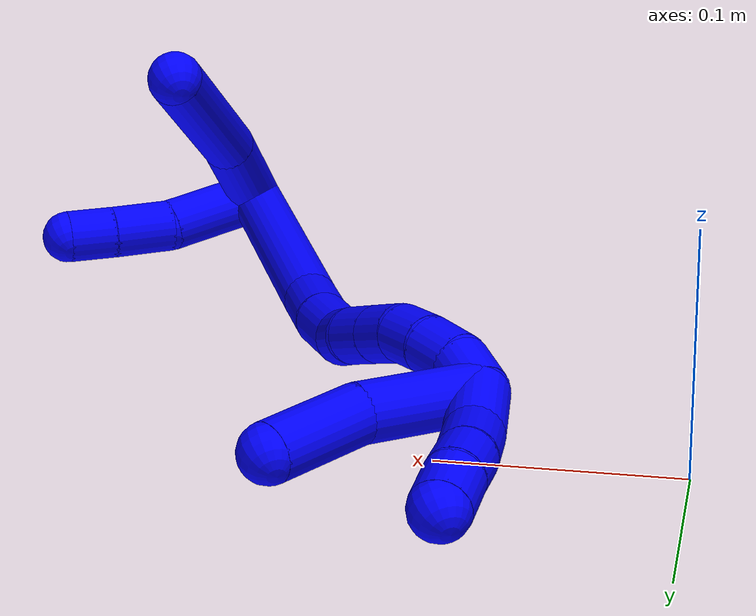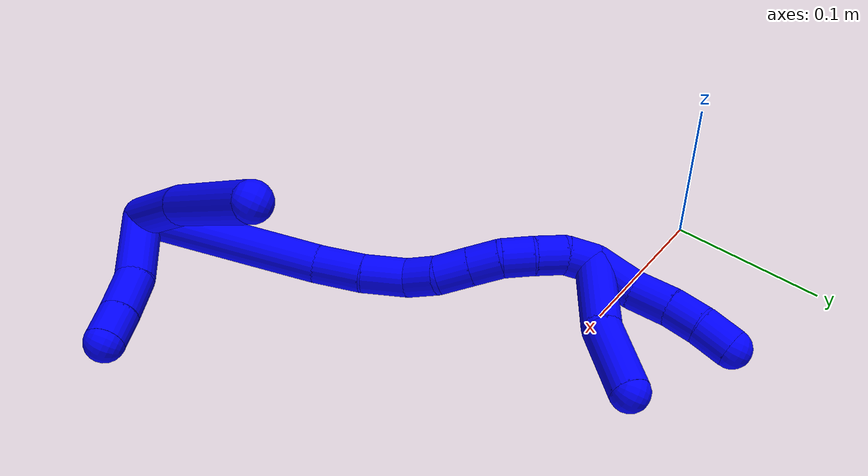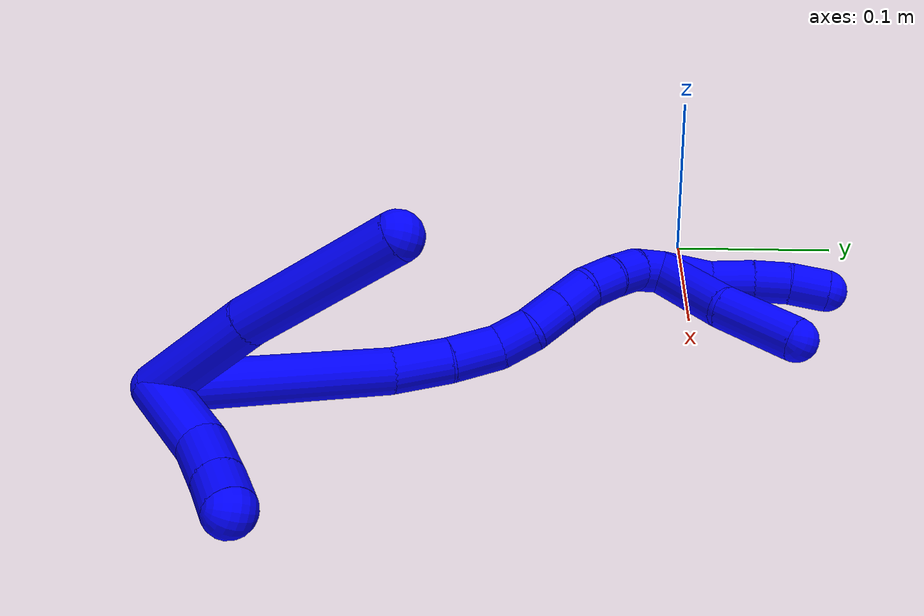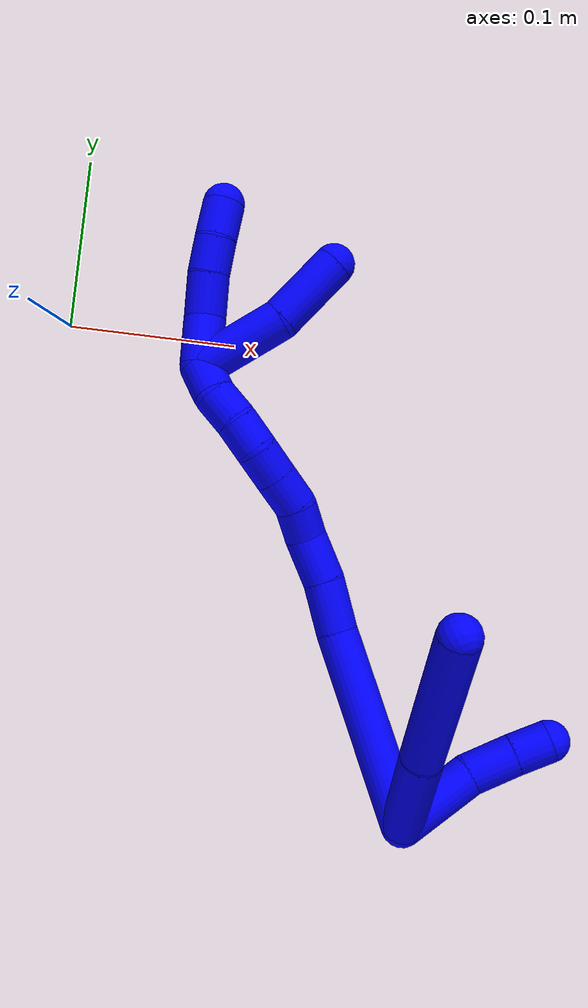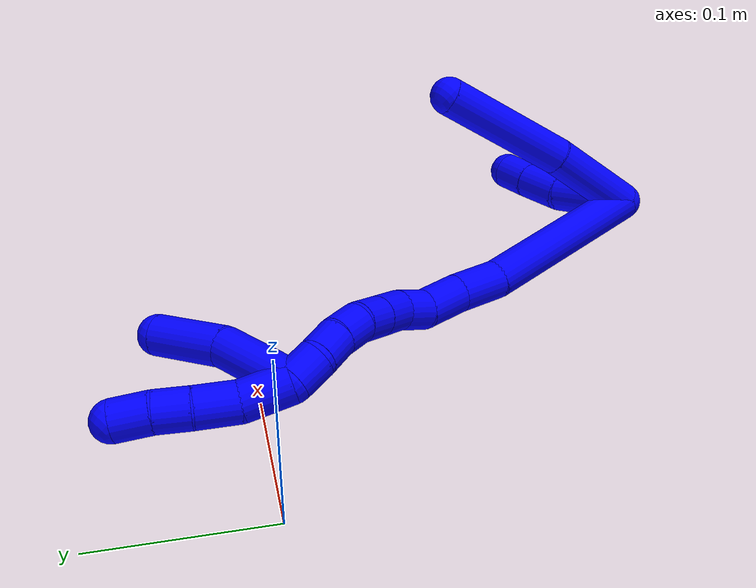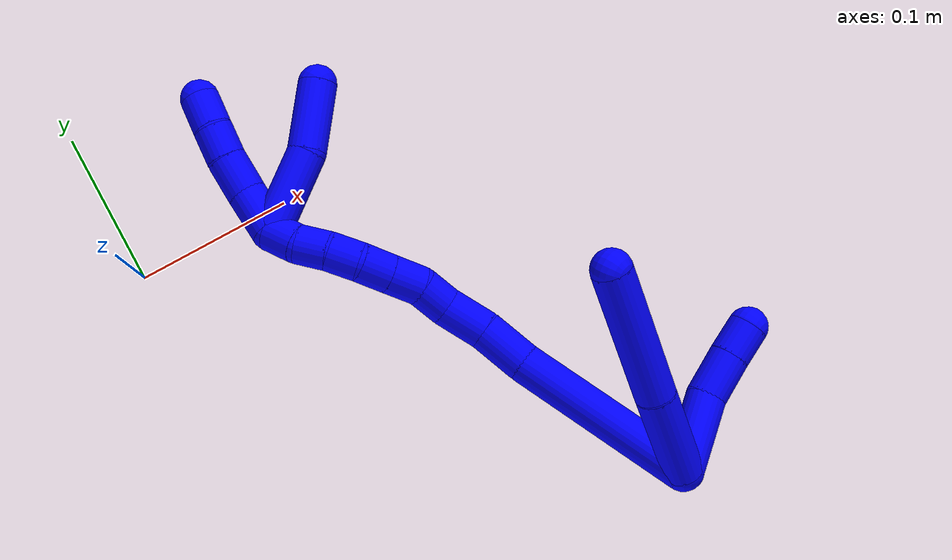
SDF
<sdf version="1.7">
 <world name="default">
  <model name="1">
   <static>0</static>
   <link name="1">
    <collision name="collision-cylinder-e_1_2_8">
     <pose>0.000369 0.029626 -0.00957 -1.88324 0.01184 -0.016267</pose>
     <geometry><cylinder><radius>0.0125</radius><length>0.06227</length></cylinder></geometry>
     <surface>
      <friction><ode><mu>1.16</mu><mu2>1.16</mu2><slip1>0</slip1><slip2>0</slip2></ode></friction>
      <contact><ode><kp>1e+06</kp><kd>1</kd><max_vel>0</max_vel><min_depth>0.001</min_depth></ode></contact>
     </surface>
    </collision>
    <visual name="visual-cylinder-e_1_2_8">
     <pose>0.000369 0.029626 -0.00957 -1.88324 0.01184 -0.016267</pose>
     <geometry><cylinder><radius>0.0125</radius><length>0.06227</length></cylinder></geometry>
     <material><ambient>0 0 1 1</ambient></material>
    </visual>
    <collision name="collision-cylinder-e_2_8_6">
     <pose>0.004492 0.099818 -0.035398 -1.95198 0.085691 -0.12657</pose>
     <geometry><cylinder><radius>0.0125</radius><length>0.08773</length></cylinder></geometry>
     <surface>
      <friction><ode><mu>1.16</mu><mu2>1.16</mu2><slip1>0</slip1><slip2>0</slip2></ode></friction>
      <contact><ode><kp>1e+06</kp><kd>1</kd><max_vel>0</max_vel><min_depth>0.001</min_depth></ode></contact>
     </surface>
    </collision>
    <visual name="visual-cylinder-e_2_8_6">
     <pose>0.004492 0.099818 -0.035398 -1.95198 0.085691 -0.12657</pose>
     <geometry><cylinder><radius>0.0125</radius><length>0.08773</length></cylinder></geometry>
     <material><ambient>0 0 1 1</ambient></material>
    </visual>
    <collision name="collision-cylinder-e_1_2_9">
     <pose>0.021932 0.008787 -0.006361 -2.19738 1.11146 -1.76529</pose>
     <geometry><cylinder><radius>0.0125</radius><length>0.048936</length></cylinder></geometry>
     <surface>
      <friction><ode><mu>1.16</mu><mu2>1.16</mu2><slip1>0</slip1><slip2>0</slip2></ode></friction>
      <contact><ode><kp>1e+06</kp><kd>1</kd><max_vel>0</max_vel><min_depth>0.001</min_depth></ode></contact>
     </surface>
    </collision>
    <visual name="visual-cylinder-e_1_2_9">
     <pose>0.021932 0.008787 -0.006361 -2.19738 1.11146 -1.76529</pose>
     <geometry><cylinder><radius>0.0125</radius><length>0.048936</length></cylinder></geometry>
     <material><ambient>0 0 1 1</ambient></material>
    </visual>
    <collision name="collision-cylinder-e_2_9_10">
     <pose>0.057055 0.023398 -0.013101 -1.63567 1.15426 -1.21438</pose>
     <geometry><cylinder><radius>0.0125</radius><length>0.028848</length></cylinder></geometry>
     <surface>
      <friction><ode><mu>1.16</mu><mu2>1.16</mu2><slip1>0</slip1><slip2>0</slip2></ode></friction>
      <contact><ode><kp>1e+06</kp><kd>1</kd><max_vel>0</max_vel><min_depth>0.001</min_depth></ode></contact>
     </surface>
    </collision>
    <visual name="visual-cylinder-e_2_9_10">
     <pose>0.057055 0.023398 -0.013101 -1.63567 1.15426 -1.21438</pose>
     <geometry><cylinder><radius>0.0125</radius><length>0.028848</length></cylinder></geometry>
     <material><ambient>0 0 1 1</ambient></material>
    </visual>
    <collision name="collision-cylinder-e_3_10_5">
     <pose>0.080457 0.033589 -0.013327 -1.53612 1.16647 -1.1348</pose>
     <geometry><cylinder><radius>0.0125</radius><length>0.022216</length></cylinder></geometry>
     <surface>
      <friction><ode><mu>1.16</mu><mu2>1.16</mu2><slip1>0</slip1><slip2>0</slip2></ode></friction>
      <contact><ode><kp>1e+06</kp><kd>1</kd><max_vel>0</max_vel><min_depth>0.001</min_depth></ode></contact>
     </surface>
    </collision>
    <visual name="visual-cylinder-e_3_10_5">
     <pose>0.080457 0.033589 -0.013327 -1.53612 1.16647 -1.1348</pose>
     <geometry><cylinder><radius>0.0125</radius><length>0.022216</length></cylinder></geometry>
     <material><ambient>0 0 1 1</ambient></material>
    </visual>
    <collision name="collision-cylinder-e_1_2_11">
     <pose>-0.004377 0.018109 -0.055585 -2.82666 -0.074728 0.462427</pose>
     <geometry><cylinder><radius>0.0125</radius><length>0.117249</length></cylinder></geometry>
     <surface>
      <friction><ode><mu>1.16</mu><mu2>1.16</mu2><slip1>0</slip1><slip2>0</slip2></ode></friction>
      <contact><ode><kp>1e+06</kp><kd>1</kd><max_vel>0</max_vel><min_depth>0.001</min_depth></ode></contact>
     </surface>
    </collision>
    <visual name="visual-cylinder-e_1_2_11">
     <pose>-0.004377 0.018109 -0.055585 -2.82666 -0.074728 0.462427</pose>
     <geometry><cylinder><radius>0.0125</radius><length>0.117249</length></cylinder></geometry>
     <material><ambient>0 0 1 1</ambient></material>
    </visual>
    <collision name="collision-cylinder-e_2_11_12">
     <pose>-0.009858 0.04376 -0.124943 -2.64054 -0.070249 0.272919</pose>
     <geometry><cylinder><radius>0.0125</radius><length>0.031482</length></cylinder></geometry>
     <surface>
      <friction><ode><mu>1.16</mu><mu2>1.16</mu2><slip1>0</slip1><slip2>0</slip2></ode></friction>
      <contact><ode><kp>1e+06</kp><kd>1</kd><max_vel>0</max_vel><min_depth>0.001</min_depth></ode></contact>
     </surface>
    </collision>
    <visual name="visual-cylinder-e_2_11_12">
     <pose>-0.009858 0.04376 -0.124943 -2.64054 -0.070249 0.272919</pose>
     <geometry><cylinder><radius>0.0125</radius><length>0.031482</length></cylinder></geometry>
     <material><ambient>0 0 1 1</ambient></material>
    </visual>
    <collision name="collision-cylinder-e_3_12_13">
     <pose>-0.013845 0.057466 -0.151346 -2.68762 -0.202218 0.827768</pose>
     <geometry><cylinder><radius>0.0125</radius><length>0.028695</length></cylinder></geometry>
     <surface>
      <friction><ode><mu>1.16</mu><mu2>1.16</mu2><slip1>0</slip1><slip2>0</slip2></ode></friction>
      <contact><ode><kp>1e+06</kp><kd>1</kd><max_vel>0</max_vel><min_depth>0.001</min_depth></ode></contact>
     </surface>
    </collision>
    <visual name="visual-cylinder-e_3_12_13">
     <pose>-0.013845 0.057466 -0.151346 -2.68762 -0.202218 0.827768</pose>
     <geometry><cylinder><radius>0.0125</radius><length>0.028695</length></cylinder></geometry>
     <material><ambient>0 0 1 1</ambient></material>
    </visual>
    <collision name="collision-cylinder-e_4_13_14">
     <pose>-0.019141 0.070956 -0.171019 -2.33639 -0.233331 0.537102</pose>
     <geometry><cylinder><radius>0.0125</radius><length>0.020888</length></cylinder></geometry>
     <surface>
      <friction><ode><mu>1.16</mu><mu2>1.16</mu2><slip1>0</slip1><slip2>0</slip2></ode></friction>
      <contact><ode><kp>1e+06</kp><kd>1</kd><max_vel>0</max_vel><min_depth>0.001</min_depth></ode></contact>
     </surface>
    </collision>
    <visual name="visual-cylinder-e_4_13_14">
     <pose>-0.019141 0.070956 -0.171019 -2.33639 -0.233331 0.537102</pose>
     <geometry><cylinder><radius>0.0125</radius><length>0.020888</length></cylinder></geometry>
     <material><ambient>0 0 1 1</ambient></material>
    </visual>
    <collision name="collision-cylinder-e_5_14_15">
     <pose>-0.026757 0.084167 -0.185517 -2.47342 -0.500897 1.27029</pose>
     <geometry><cylinder><radius>0.0125</radius><length>0.021659</length></cylinder></geometry>
     <surface>
      <friction><ode><mu>1.16</mu><mu2>1.16</mu2><slip1>0</slip1><slip2>0</slip2></ode></friction>
      <contact><ode><kp>1e+06</kp><kd>1</kd><max_vel>0</max_vel><min_depth>0.001</min_depth></ode></contact>
     </surface>
    </collision>
    <visual name="visual-cylinder-e_5_14_15">
     <pose>-0.026757 0.084167 -0.185517 -2.47342 -0.500897 1.27029</pose>
     <geometry><cylinder><radius>0.0125</radius><length>0.021659</length></cylinder></geometry>
     <material><ambient>0 0 1 1</ambient></material>
    </visual>
    <collision name="collision-cylinder-e_6_15_16">
     <pose>-0.036687 0.09551 -0.199906 -2.47469 -0.492044 1.25454</pose>
     <geometry><cylinder><radius>0.0125</radius><length>0.020023</length></cylinder></geometry>
     <surface>
      <friction><ode><mu>1.16</mu><mu2>1.16</mu2><slip1>0</slip1><slip2>0</slip2></ode></friction>
      <contact><ode><kp>1e+06</kp><kd>1</kd><max_vel>0</max_vel><min_depth>0.001</min_depth></ode></contact>
     </surface>
    </collision>
    <visual name="visual-cylinder-e_6_15_16">
     <pose>-0.036687 0.09551 -0.199906 -2.47469 -0.492044 1.25454</pose>
     <geometry><cylinder><radius>0.0125</radius><length>0.020023</length></cylinder></geometry>
     <material><ambient>0 0 1 1</ambient></material>
    </visual>
    <collision name="collision-cylinder-e_7_16_17">
     <pose>-0.045436 0.104405 -0.215329 -2.75693 -0.413541 1.64508</pose>
     <geometry><cylinder><radius>0.0125</radius><length>0.020004</length></cylinder></geometry>
     <surface>
      <friction><ode><mu>1.16</mu><mu2>1.16</mu2><slip1>0</slip1><slip2>0</slip2></ode></friction>
      <contact><ode><kp>1e+06</kp><kd>1</kd><max_vel>0</max_vel><min_depth>0.001</min_depth></ode></contact>
     </surface>
    </collision>
    <visual name="visual-cylinder-e_7_16_17">
     <pose>-0.045436 0.104405 -0.215329 -2.75693 -0.413541 1.64508</pose>
     <geometry><cylinder><radius>0.0125</radius><length>0.020004</length></cylinder></geometry>
     <material><ambient>0 0 1 1</ambient></material>
    </visual>
    <collision name="collision-cylinder-e_8_17_18">
     <pose>-0.053616 0.109632 -0.232734 -2.94347 -0.429135 2.28582</pose>
     <geometry><cylinder><radius>0.0125</radius><length>0.02</length></cylinder></geometry>
     <surface>
      <friction><ode><mu>1.16</mu><mu2>1.16</mu2><slip1>0</slip1><slip2>0</slip2></ode></friction>
      <contact><ode><kp>1e+06</kp><kd>1</kd><max_vel>0</max_vel><min_depth>0.001</min_depth></ode></contact>
     </surface>
    </collision>
    <visual name="visual-cylinder-e_8_17_18">
     <pose>-0.053616 0.109632 -0.232734 -2.94347 -0.429135 2.28582</pose>
     <geometry><cylinder><radius>0.0125</radius><length>0.02</length></cylinder></geometry>
     <material><ambient>0 0 1 1</ambient></material>
    </visual>
    <collision name="collision-cylinder-e_9_18_1">
     <pose>-0.059059 0.112537 -0.251504 -3.02884 -0.128554 1.70189</pose>
     <geometry><cylinder><radius>0.0125</radius><length>0.02</length></cylinder></geometry>
     <surface>
      <friction><ode><mu>1.16</mu><mu2>1.16</mu2><slip1>0</slip1><slip2>0</slip2></ode></friction>
      <contact><ode><kp>1e+06</kp><kd>1</kd><max_vel>0</max_vel><min_depth>0.001</min_depth></ode></contact>
     </surface>
    </collision>
    <visual name="visual-cylinder-e_9_18_1">
     <pose>-0.059059 0.112537 -0.251504 -3.02884 -0.128554 1.70189</pose>
     <geometry><cylinder><radius>0.0125</radius><length>0.02</length></cylinder></geometry>
     <material><ambient>0 0 1 1</ambient></material>
    </visual>
    <collision name="collision-cylinder-e_1_1_19">
     <pose>-0.036814 0.126491 -0.264916 -1.84115 1.05558 -1.30794</pose>
     <geometry><cylinder><radius>0.0125</radius><length>0.054074</length></cylinder></geometry>
     <surface>
      <friction><ode><mu>1.16</mu><mu2>1.16</mu2><slip1>0</slip1><slip2>0</slip2></ode></friction>
      <contact><ode><kp>1e+06</kp><kd>1</kd><max_vel>0</max_vel><min_depth>0.001</min_depth></ode></contact>
     </surface>
    </collision>
    <visual name="visual-cylinder-e_1_1_19">
     <pose>-0.036814 0.126491 -0.264916 -1.84115 1.05558 -1.30794</pose>
     <geometry><cylinder><radius>0.0125</radius><length>0.054074</length></cylinder></geometry>
     <material><ambient>0 0 1 1</ambient></material>
    </visual>
    <collision name="collision-cylinder-e_2_19_4">
     <pose>0.004671 0.150227 -0.27775 -2.27592 0.897915 -1.61256</pose>
     <geometry><cylinder><radius>0.0125</radius><length>0.045926</length></cylinder></geometry>
     <surface>
      <friction><ode><mu>1.16</mu><mu2>1.16</mu2><slip1>0</slip1><slip2>0</slip2></ode></friction>
      <contact><ode><kp>1e+06</kp><kd>1</kd><max_vel>0</max_vel><min_depth>0.001</min_depth></ode></contact>
     </surface>
    </collision>
    <visual name="visual-cylinder-e_2_19_4">
     <pose>0.004671 0.150227 -0.27775 -2.27592 0.897915 -1.61256</pose>
     <geometry><cylinder><radius>0.0125</radius><length>0.045926</length></cylinder></geometry>
     <material><ambient>0 0 1 1</ambient></material>
    </visual>
    <collision name="collision-cylinder-e_1_1_20">
     <pose>-0.055839 0.11898 -0.274708 -2.7619 0.303558 -1.34457</pose>
     <geometry><cylinder><radius>0.0125</radius><length>0.030124</length></cylinder></geometry>
     <surface>
      <friction><ode><mu>1.16</mu><mu2>1.16</mu2><slip1>0</slip1><slip2>0</slip2></ode></friction>
      <contact><ode><kp>1e+06</kp><kd>1</kd><max_vel>0</max_vel><min_depth>0.001</min_depth></ode></contact>
     </surface>
    </collision>
    <visual name="visual-cylinder-e_1_1_20">
     <pose>-0.055839 0.11898 -0.274708 -2.7619 0.303558 -1.34457</pose>
     <geometry><cylinder><radius>0.0125</radius><length>0.030124</length></cylinder></geometry>
     <material><ambient>0 0 1 1</ambient></material>
    </visual>
    <collision name="collision-cylinder-e_2_20_21">
     <pose>-0.048295 0.131999 -0.298208 -2.49314 0.234412 -0.673959</pose>
     <geometry><cylinder><radius>0.0125</radius><length>0.026186</length></cylinder></geometry>
     <surface>
      <friction><ode><mu>1.16</mu><mu2>1.16</mu2><slip1>0</slip1><slip2>0</slip2></ode></friction>
      <contact><ode><kp>1e+06</kp><kd>1</kd><max_vel>0</max_vel><min_depth>0.001</min_depth></ode></contact>
     </surface>
    </collision>
    <visual name="visual-cylinder-e_2_20_21">
     <pose>-0.048295 0.131999 -0.298208 -2.49314 0.234412 -0.673959</pose>
     <geometry><cylinder><radius>0.0125</radius><length>0.026186</length></cylinder></geometry>
     <material><ambient>0 0 1 1</ambient></material>
    </visual>
    <collision name="collision-cylinder-e_3_21_22">
     <pose>-0.041577 0.145702 -0.316285 -2.4928 0.354073 -0.977887</pose>
     <geometry><cylinder><radius>0.0125</radius><length>0.021214</length></cylinder></geometry>
     <surface>
      <friction><ode><mu>1.16</mu><mu2>1.16</mu2><slip1>0</slip1><slip2>0</slip2></ode></friction>
      <contact><ode><kp>1e+06</kp><kd>1</kd><max_vel>0</max_vel><min_depth>0.001</min_depth></ode></contact>
     </surface>
    </collision>
    <visual name="visual-cylinder-e_3_21_22">
     <pose>-0.041577 0.145702 -0.316285 -2.4928 0.354073 -0.977887</pose>
     <geometry><cylinder><radius>0.0125</radius><length>0.021214</length></cylinder></geometry>
     <material><ambient>0 0 1 1</ambient></material>
    </visual>
    <collision name="collision-cylinder-e_4_22_3">
     <pose>-0.03337 0.156753 -0.333178 -2.62944 0.414762 -1.35389</pose>
     <geometry><cylinder><radius>0.0125</radius><length>0.022476</length></cylinder></geometry>
     <surface>
      <friction><ode><mu>1.16</mu><mu2>1.16</mu2><slip1>0</slip1><slip2>0</slip2></ode></friction>
      <contact><ode><kp>1e+06</kp><kd>1</kd><max_vel>0</max_vel><min_depth>0.001</min_depth></ode></contact>
     </surface>
    </collision>
    <visual name="visual-cylinder-e_4_22_3">
     <pose>-0.03337 0.156753 -0.333178 -2.62944 0.414762 -1.35389</pose>
     <geometry><cylinder><radius>0.0125</radius><length>0.022476</length></cylinder></geometry>
     <material><ambient>0 0 1 1</ambient></material>
    </visual>
    <collision name="collision-sphere-3">
     <pose>-0.028842 0.161794 -0.342144 0 -0 0</pose>
     <geometry><sphere><radius>0.0125</radius></sphere></geometry>
     <surface>
      <friction><ode><mu>1.16</mu><mu2>1.16</mu2><slip1>0</slip1><slip2>0</slip2></ode></friction>
      <contact><ode><kp>1e+06</kp><kd>1</kd><max_vel>0</max_vel><min_depth>0.001</min_depth></ode></contact>
     </surface>
    </collision>
    <visual name="visual-sphere-3">
     <pose>-0.028842 0.161794 -0.342144 0 -0 0</pose>
     <geometry><sphere><radius>0.0125</radius></sphere></geometry>
     <material><ambient>0 0 1 1</ambient></material>
    </visual>
    <collision name="collision-sphere-22">
     <pose>-0.037899 0.151713 -0.324213 0 -0 0</pose>
     <geometry><sphere><radius>0.0125</radius></sphere></geometry>
     <surface>
      <friction><ode><mu>1.16</mu><mu2>1.16</mu2><slip1>0</slip1><slip2>0</slip2></ode></friction>
      <contact><ode><kp>1e+06</kp><kd>1</kd><max_vel>0</max_vel><min_depth>0.001</min_depth></ode></contact>
     </surface>
    </collision>
    <visual name="visual-sphere-22">
     <pose>-0.037899 0.151713 -0.324213 0 -0 0</pose>
     <geometry><sphere><radius>0.0125</radius></sphere></geometry>
     <material><ambient>0 0 1 1</ambient></material>
    </visual>
    <collision name="collision-sphere-21">
     <pose>-0.045254 0.13969 -0.308358 0 -0 0</pose>
     <geometry><sphere><radius>0.0125</radius></sphere></geometry>
     <surface>
      <friction><ode><mu>1.16</mu><mu2>1.16</mu2><slip1>0</slip1><slip2>0</slip2></ode></friction>
      <contact><ode><kp>1e+06</kp><kd>1</kd><max_vel>0</max_vel><min_depth>0.001</min_depth></ode></contact>
     </surface>
    </collision>
    <visual name="visual-sphere-21">
     <pose>-0.045254 0.13969 -0.308358 0 -0 0</pose>
     <geometry><sphere><radius>0.0125</radius></sphere></geometry>
     <material><ambient>0 0 1 1</ambient></material>
    </visual>
    <collision name="collision-sphere-20">
     <pose>-0.051337 0.124307 -0.288058 0 -0 0</pose>
     <geometry><sphere><radius>0.0125</radius></sphere></geometry>
     <surface>
      <friction><ode><mu>1.16</mu><mu2>1.16</mu2><slip1>0</slip1><slip2>0</slip2></ode></friction>
      <contact><ode><kp>1e+06</kp><kd>1</kd><max_vel>0</max_vel><min_depth>0.001</min_depth></ode></contact>
     </surface>
    </collision>
    <visual name="visual-sphere-20">
     <pose>-0.051337 0.124307 -0.288058 0 -0 0</pose>
     <geometry><sphere><radius>0.0125</radius></sphere></geometry>
     <material><ambient>0 0 1 1</ambient></material>
    </visual>
    <collision name="collision-sphere-4">
     <pose>0.022629 0.161126 -0.287026 0 -0 0</pose>
     <geometry><sphere><radius>0.0125</radius></sphere></geometry>
     <surface>
      <friction><ode><mu>1.16</mu><mu2>1.16</mu2><slip1>0</slip1><slip2>0</slip2></ode></friction>
      <contact><ode><kp>1e+06</kp><kd>1</kd><max_vel>0</max_vel><min_depth>0.001</min_depth></ode></contact>
     </surface>
    </collision>
    <visual name="visual-sphere-4">
     <pose>0.022629 0.161126 -0.287026 0 -0 0</pose>
     <geometry><sphere><radius>0.0125</radius></sphere></geometry>
     <material><ambient>0 0 1 1</ambient></material>
    </visual>
    <collision name="collision-sphere-5">
     <pose>0.09067 0.037956 -0.013176 0 -0 0</pose>
     <geometry><sphere><radius>0.0125</radius></sphere></geometry>
     <surface>
      <friction><ode><mu>1.16</mu><mu2>1.16</mu2><slip1>0</slip1><slip2>0</slip2></ode></friction>
      <contact><ode><kp>1e+06</kp><kd>1</kd><max_vel>0</max_vel><min_depth>0.001</min_depth></ode></contact>
     </surface>
    </collision>
    <visual name="visual-sphere-5">
     <pose>0.09067 0.037956 -0.013176 0 -0 0</pose>
     <geometry><sphere><radius>0.0125</radius></sphere></geometry>
     <material><ambient>0 0 1 1</ambient></material>
    </visual>
    <collision name="collision-sphere-10">
     <pose>0.070245 0.029222 -0.013479 0 -0 0</pose>
     <geometry><sphere><radius>0.0125</radius></sphere></geometry>
     <surface>
      <friction><ode><mu>1.16</mu><mu2>1.16</mu2><slip1>0</slip1><slip2>0</slip2></ode></friction>
      <contact><ode><kp>1e+06</kp><kd>1</kd><max_vel>0</max_vel><min_depth>0.001</min_depth></ode></contact>
     </surface>
    </collision>
    <visual name="visual-sphere-10">
     <pose>0.070245 0.029222 -0.013479 0 -0 0</pose>
     <geometry><sphere><radius>0.0125</radius></sphere></geometry>
     <material><ambient>0 0 1 1</ambient></material>
    </visual>
    <collision name="collision-sphere-6">
     <pose>0.008246 0.140385 -0.051657 0 -0 0</pose>
     <geometry><sphere><radius>0.0125</radius></sphere></geometry>
     <surface>
      <friction><ode><mu>1.16</mu><mu2>1.16</mu2><slip1>0</slip1><slip2>0</slip2></ode></friction>
      <contact><ode><kp>1e+06</kp><kd>1</kd><max_vel>0</max_vel><min_depth>0.001</min_depth></ode></contact>
     </surface>
    </collision>
    <visual name="visual-sphere-6">
     <pose>0.008246 0.140385 -0.051657 0 -0 0</pose>
     <geometry><sphere><radius>0.0125</radius></sphere></geometry>
     <material><ambient>0 0 1 1</ambient></material>
    </visual>
    <collision name="collision-sphere-9">
     <pose>0.043864 0.017575 -0.012722 0 -0 0</pose>
     <geometry><sphere><radius>0.0125</radius></sphere></geometry>
     <surface>
      <friction><ode><mu>1.16</mu><mu2>1.16</mu2><slip1>0</slip1><slip2>0</slip2></ode></friction>
      <contact><ode><kp>1e+06</kp><kd>1</kd><max_vel>0</max_vel><min_depth>0.001</min_depth></ode></contact>
     </surface>
    </collision>
    <visual name="visual-sphere-9">
     <pose>0.043864 0.017575 -0.012722 0 -0 0</pose>
     <geometry><sphere><radius>0.0125</radius></sphere></geometry>
     <material><ambient>0 0 1 1</ambient></material>
    </visual>
    <collision name="collision-sphere-2">
     <geometry><sphere><radius>0.0125</radius></sphere></geometry>
     <surface>
      <friction><ode><mu>1.16</mu><mu2>1.16</mu2><slip1>0</slip1><slip2>0</slip2></ode></friction>
      <contact><ode><kp>1e+06</kp><kd>1</kd><max_vel>0</max_vel><min_depth>0.001</min_depth></ode></contact>
     </surface>
    </collision>
    <visual name="visual-sphere-2">
     <geometry><sphere><radius>0.0125</radius></sphere></geometry>
     <material><ambient>0 0 1 1</ambient></material>
    </visual>
    <collision name="collision-sphere-19">
     <pose>-0.013287 0.139329 -0.268474 0 -0 0</pose>
     <geometry><sphere><radius>0.0125</radius></sphere></geometry>
     <surface>
      <friction><ode><mu>1.16</mu><mu2>1.16</mu2><slip1>0</slip1><slip2>0</slip2></ode></friction>
      <contact><ode><kp>1e+06</kp><kd>1</kd><max_vel>0</max_vel><min_depth>0.001</min_depth></ode></contact>
     </surface>
    </collision>
    <visual name="visual-sphere-19">
     <pose>-0.013287 0.139329 -0.268474 0 -0 0</pose>
     <geometry><sphere><radius>0.0125</radius></sphere></geometry>
     <material><ambient>0 0 1 1</ambient></material>
    </visual>
    <collision name="collision-sphere-8">
     <pose>0.000737 0.059251 -0.019139 0 -0 0</pose>
     <geometry><sphere><radius>0.0125</radius></sphere></geometry>
     <surface>
      <friction><ode><mu>1.16</mu><mu2>1.16</mu2><slip1>0</slip1><slip2>0</slip2></ode></friction>
      <contact><ode><kp>1e+06</kp><kd>1</kd><max_vel>0</max_vel><min_depth>0.001</min_depth></ode></contact>
     </surface>
    </collision>
    <visual name="visual-sphere-8">
     <pose>0.000737 0.059251 -0.019139 0 -0 0</pose>
     <geometry><sphere><radius>0.0125</radius></sphere></geometry>
     <material><ambient>0 0 1 1</ambient></material>
    </visual>
    <collision name="collision-sphere-11">
     <pose>-0.008754 0.036217 -0.111171 0 -0 0</pose>
     <geometry><sphere><radius>0.0125</radius></sphere></geometry>
     <surface>
      <friction><ode><mu>1.16</mu><mu2>1.16</mu2><slip1>0</slip1><slip2>0</slip2></ode></friction>
      <contact><ode><kp>1e+06</kp><kd>1</kd><max_vel>0</max_vel><min_depth>0.001</min_depth></ode></contact>
     </surface>
    </collision>
    <visual name="visual-sphere-11">
     <pose>-0.008754 0.036217 -0.111171 0 -0 0</pose>
     <geometry><sphere><radius>0.0125</radius></sphere></geometry>
     <material><ambient>0 0 1 1</ambient></material>
    </visual>
    <collision name="collision-sphere-12">
     <pose>-0.010963 0.051302 -0.138715 0 -0 0</pose>
     <geometry><sphere><radius>0.0125</radius></sphere></geometry>
     <surface>
      <friction><ode><mu>1.16</mu><mu2>1.16</mu2><slip1>0</slip1><slip2>0</slip2></ode></friction>
      <contact><ode><kp>1e+06</kp><kd>1</kd><max_vel>0</max_vel><min_depth>0.001</min_depth></ode></contact>
     </surface>
    </collision>
    <visual name="visual-sphere-12">
     <pose>-0.010963 0.051302 -0.138715 0 -0 0</pose>
     <geometry><sphere><radius>0.0125</radius></sphere></geometry>
     <material><ambient>0 0 1 1</ambient></material>
    </visual>
    <collision name="collision-sphere-13">
     <pose>-0.016727 0.06363 -0.163978 0 -0 0</pose>
     <geometry><sphere><radius>0.0125</radius></sphere></geometry>
     <surface>
      <friction><ode><mu>1.16</mu><mu2>1.16</mu2><slip1>0</slip1><slip2>0</slip2></ode></friction>
      <contact><ode><kp>1e+06</kp><kd>1</kd><max_vel>0</max_vel><min_depth>0.001</min_depth></ode></contact>
     </surface>
    </collision>
    <visual name="visual-sphere-13">
     <pose>-0.016727 0.06363 -0.163978 0 -0 0</pose>
     <geometry><sphere><radius>0.0125</radius></sphere></geometry>
     <material><ambient>0 0 1 1</ambient></material>
    </visual>
    <collision name="collision-sphere-14">
     <pose>-0.021556 0.078282 -0.17806 0 -0 0</pose>
     <geometry><sphere><radius>0.0125</radius></sphere></geometry>
     <surface>
      <friction><ode><mu>1.16</mu><mu2>1.16</mu2><slip1>0</slip1><slip2>0</slip2></ode></friction>
      <contact><ode><kp>1e+06</kp><kd>1</kd><max_vel>0</max_vel><min_depth>0.001</min_depth></ode></contact>
     </surface>
    </collision>
    <visual name="visual-sphere-14">
     <pose>-0.021556 0.078282 -0.17806 0 -0 0</pose>
     <geometry><sphere><radius>0.0125</radius></sphere></geometry>
     <material><ambient>0 0 1 1</ambient></material>
    </visual>
    <collision name="collision-sphere-15">
     <pose>-0.031957 0.090052 -0.192973 0 -0 0</pose>
     <geometry><sphere><radius>0.0125</radius></sphere></geometry>
     <surface>
      <friction><ode><mu>1.16</mu><mu2>1.16</mu2><slip1>0</slip1><slip2>0</slip2></ode></friction>
      <contact><ode><kp>1e+06</kp><kd>1</kd><max_vel>0</max_vel><min_depth>0.001</min_depth></ode></contact>
     </surface>
    </collision>
    <visual name="visual-sphere-15">
     <pose>-0.031957 0.090052 -0.192973 0 -0 0</pose>
     <geometry><sphere><radius>0.0125</radius></sphere></geometry>
     <material><ambient>0 0 1 1</ambient></material>
    </visual>
    <collision name="collision-sphere-16">
     <pose>-0.041416 0.100968 -0.206839 0 -0 0</pose>
     <geometry><sphere><radius>0.0125</radius></sphere></geometry>
     <surface>
      <friction><ode><mu>1.16</mu><mu2>1.16</mu2><slip1>0</slip1><slip2>0</slip2></ode></friction>
      <contact><ode><kp>1e+06</kp><kd>1</kd><max_vel>0</max_vel><min_depth>0.001</min_depth></ode></contact>
     </surface>
    </collision>
    <visual name="visual-sphere-16">
     <pose>-0.041416 0.100968 -0.206839 0 -0 0</pose>
     <geometry><sphere><radius>0.0125</radius></sphere></geometry>
     <material><ambient>0 0 1 1</ambient></material>
    </visual>
    <collision name="collision-sphere-17">
     <pose>-0.049455 0.107842 -0.223819 0 -0 0</pose>
     <geometry><sphere><radius>0.0125</radius></sphere></geometry>
     <surface>
      <friction><ode><mu>1.16</mu><mu2>1.16</mu2><slip1>0</slip1><slip2>0</slip2></ode></friction>
      <contact><ode><kp>1e+06</kp><kd>1</kd><max_vel>0</max_vel><min_depth>0.001</min_depth></ode></contact>
     </surface>
    </collision>
    <visual name="visual-sphere-17">
     <pose>-0.049455 0.107842 -0.223819 0 -0 0</pose>
     <geometry><sphere><radius>0.0125</radius></sphere></geometry>
     <material><ambient>0 0 1 1</ambient></material>
    </visual>
    <collision name="collision-sphere-18">
     <pose>-0.057777 0.111421 -0.24165 0 -0 0</pose>
     <geometry><sphere><radius>0.0125</radius></sphere></geometry>
     <surface>
      <friction><ode><mu>1.16</mu><mu2>1.16</mu2><slip1>0</slip1><slip2>0</slip2></ode></friction>
      <contact><ode><kp>1e+06</kp><kd>1</kd><max_vel>0</max_vel><min_depth>0.001</min_depth></ode></contact>
     </surface>
    </collision>
    <visual name="visual-sphere-18">
     <pose>-0.057777 0.111421 -0.24165 0 -0 0</pose>
     <geometry><sphere><radius>0.0125</radius></sphere></geometry>
     <material><ambient>0 0 1 1</ambient></material>
    </visual>
    <collision name="collision-sphere-1">
     <pose>-0.060341 0.113653 -0.261359 0 -0 0</pose>
     <geometry><sphere><radius>0.0125</radius></sphere></geometry>
     <surface>
      <friction><ode><mu>1.16</mu><mu2>1.16</mu2><slip1>0</slip1><slip2>0</slip2></ode></friction>
      <contact><ode><kp>1e+06</kp><kd>1</kd><max_vel>0</max_vel><min_depth>0.001</min_depth></ode></contact>
     </surface>
    </collision>
    <visual name="visual-sphere-1">
     <pose>-0.060341 0.113653 -0.261359 0 -0 0</pose>
     <geometry><sphere><radius>0.0125</radius></sphere></geometry>
     <material><ambient>0 0 1 1</ambient></material>
    </visual>
    <inertial>
     <pose>-0.010038 0.075662 -0.136572 0 -0 0</pose>
     <mass>0.75</mass>
     <inertia>
      <ixx>0.000266</ixx>
      <ixy>0</ixy>
      <ixz>0</ixz>
      <iyy>-5.3e-05</iyy>
      <iyz>0</iyz>
      <izz>-0.000213</izz>
     </inertia>
    </inertial>
   </link>
   <pose>0.233571 -0.266834 0.031542 1.04606 0.384964 0.301969</pose>
  </model>
 </world>
</sdf>
